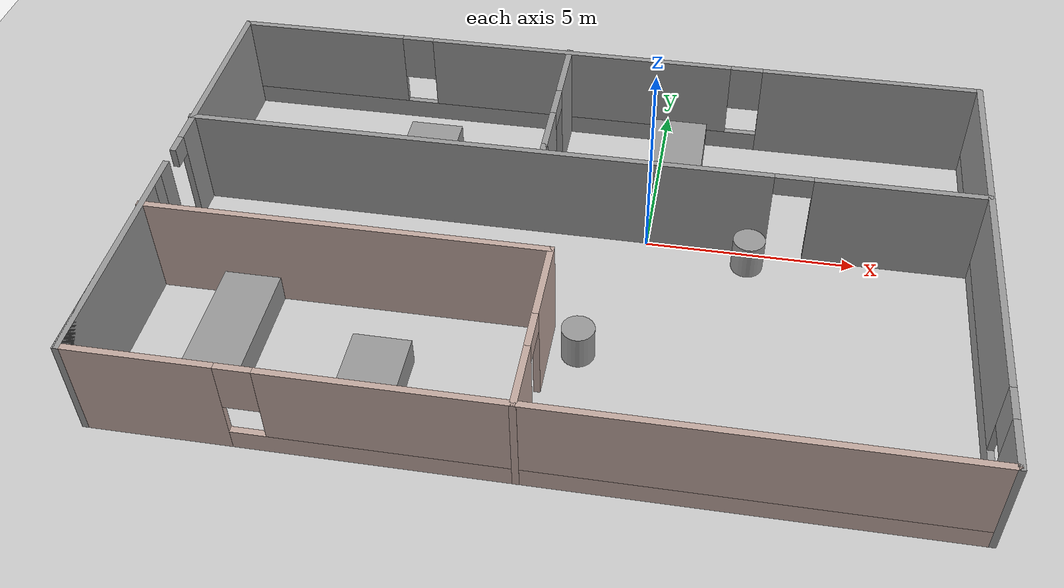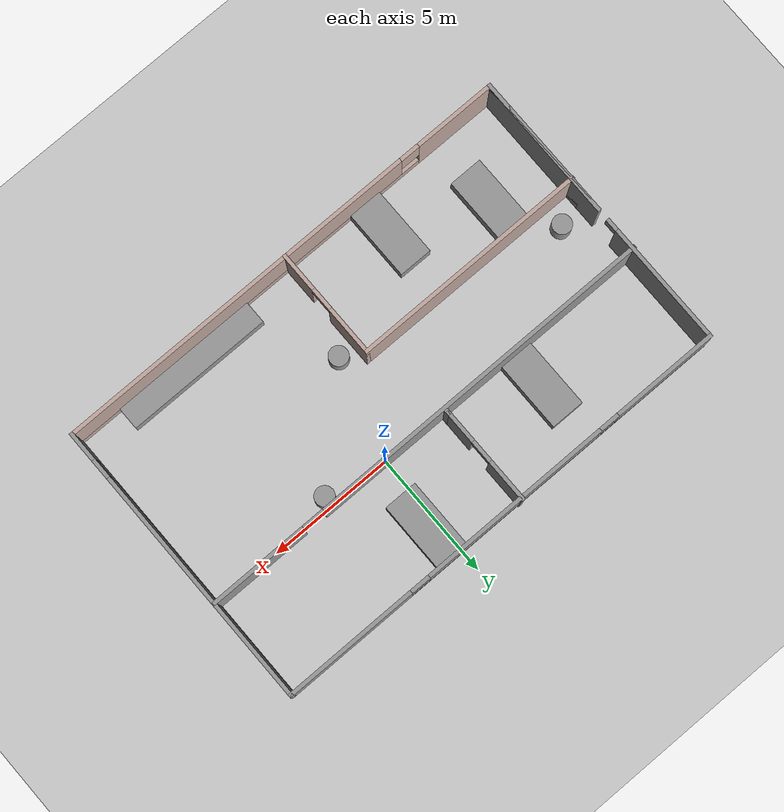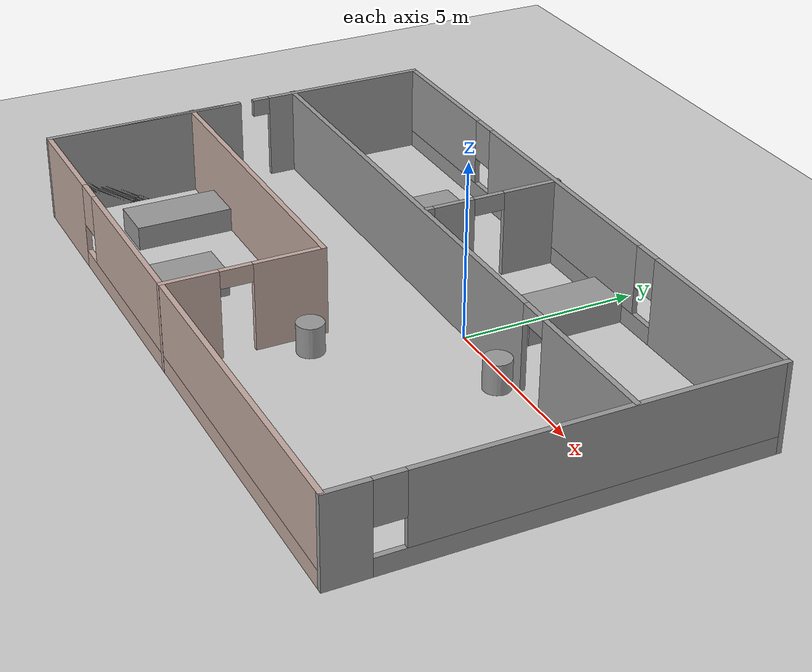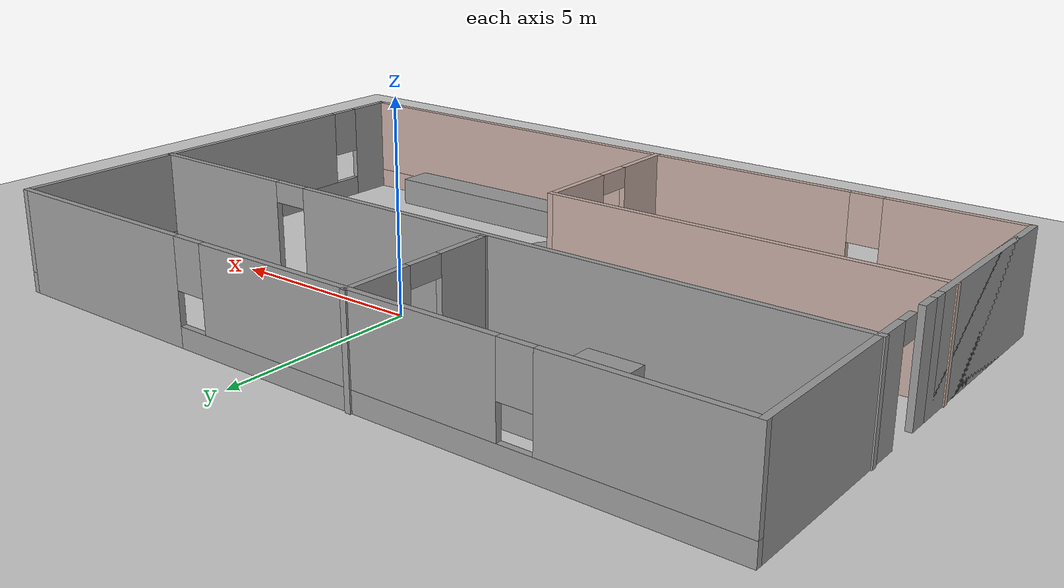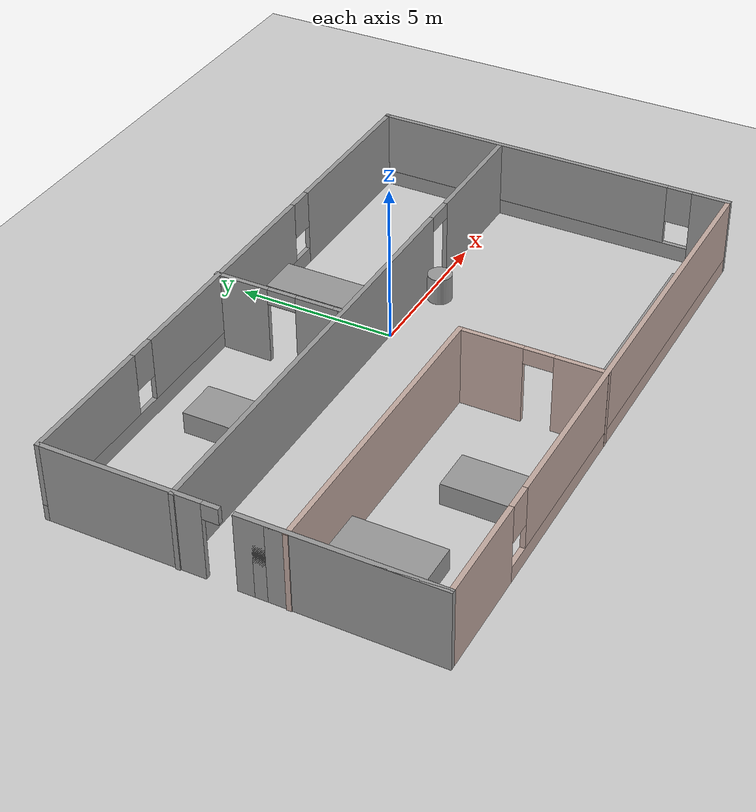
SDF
<sdf version="1.7">
 <world name="default">
  <light name="sun" type="directional">
   <pose>0 0 10 0 -0 0</pose>
   <diffuse>0.8 0.8 0.8 1</diffuse>
   <specular>0.2 0.2 0.2 1</specular>
   <attenuation>
    <range>1000</range>
    <constant>0.9</constant>
    <linear>0.01</linear>
    <quadratic>0.001</quadratic>
   </attenuation>
   <direction>-0.5 0.1 -0.9</direction>
   <spot><inner_angle>0</inner_angle><outer_angle>0</outer_angle><falloff>0</falloff></spot>
  </light>
  <model name="ground_plane">
   <static>1</static>
   <link name="link">
    <collision name="collision">
     <geometry><plane><normal>0 0 1</normal><size>100 100</size></plane></geometry>
     <surface>
      <contact><collide_bitmask>65535</collide_bitmask></contact>
      <friction><ode><mu>100</mu><mu2>50</mu2></ode></friction>
     </surface>
    </collision>
    <visual name="visual">
     <cast_shadows>0</cast_shadows>
     <geometry><plane><normal>0 0 1</normal><size>100 100</size></plane></geometry>
     <material>
      <script><uri>file://media/materials/scripts/gazebo.material</uri><name>Gazebo/Grey</name></script>
     </material>
    </visual>
   </link>
  </model>
  <gravity>0 0 -9.8</gravity>
  <magnetic_field>6e-06 2.3e-05 -4.2e-05</magnetic_field>
  <atmosphere type="adiabatic"/>
  <physics type="ode">
   <max_step_size>0.001</max_step_size>
   <real_time_factor>1</real_time_factor>
   <real_time_update_rate>1000</real_time_update_rate>
  </physics>
  <scene><ambient>0.4 0.4 0.4 1</ambient><background>0.7 0.7 0.7 1</background><shadows>1</shadows></scene>
  <audio><device>default</device></audio>
  <spherical_coordinates>
   <surface_model>EARTH_WGS84</surface_model>
   <latitude_deg>0</latitude_deg>
   <longitude_deg>0</longitude_deg>
   <elevation>0</elevation>
   <heading_deg>0</heading_deg>
  </spherical_coordinates>
  <model name="small_hospital">
   <pose>-1.74761 -1.64393 0 0 -0 0</pose>
   <link name="Wall_1">
    <pose>-9.40807 -0.020223 0 0 -0 -1.5708</pose>
    <visual name="Wall_1_Visual_0">
     <pose>-3.4065 0 1.25 0 -0 0</pose>
     <geometry><box><size>4.93699 0.15 2.5</size></box></geometry>
     <material>
      <script><uri>file://media/materials/scripts/gazebo.material</uri><name>Gazebo/Grey</name></script>
      <ambient>0.752941 0.74902 0.737255 1</ambient>
     </material>
     <meta><layer>0</layer></meta>
    </visual>
    <collision name="Wall_1_Collision_0">
     <geometry><box><size>4.93699 0.15 2.5</size></box></geometry>
     <pose>-3.4065 0 1.25 0 -0 0</pose>
    </collision>
    <visual name="Wall_1_Visual_1">
     <pose>2.9185 0 1.25 0 -0 0</pose>
     <geometry><box><size>5.91301 0.15 2.5</size></box></geometry>
     <material>
      <script><uri>file://media/materials/scripts/gazebo.material</uri><name>Gazebo/Grey</name></script>
      <ambient>0.752941 0.74902 0.737255 1</ambient>
     </material>
     <meta><layer>0</layer></meta>
    </visual>
    <collision name="Wall_1_Collision_1">
     <geometry><box><size>5.91301 0.15 2.5</size></box></geometry>
     <pose>2.9185 0 1.25 0 -0 0</pose>
    </collision>
    <visual name="Wall_1_Visual_2">
     <pose>3.17133 0 1.25 0 -0 0</pose>
     <geometry><box><size>5.40733 0.15 2.5</size></box></geometry>
     <material>
      <script><uri>file://media/materials/scripts/gazebo.material</uri><name>Gazebo/Grey</name></script>
      <ambient>0.752941 0.74902 0.737255 1</ambient>
     </material>
     <meta><layer>0</layer></meta>
    </visual>
    <collision name="Wall_1_Collision_2">
     <geometry><box><size>5.40733 0.15 2.5</size></box></geometry>
     <pose>3.17133 0 1.25 0 -0 0</pose>
    </collision>
    <visual name="Wall_1_Visual_3">
     <pose>3.35823 0 1.25 0 -0 0</pose>
     <geometry><box><size>5.03354 0.15 2.5</size></box></geometry>
     <material>
      <script><uri>file://media/materials/scripts/gazebo.material</uri><name>Gazebo/Grey</name></script>
      <ambient>0.752941 0.74902 0.737255 1</ambient>
     </material>
     <meta><layer>0</layer></meta>
    </visual>
    <collision name="Wall_1_Collision_3">
     <geometry><box><size>5.03354 0.15 2.5</size></box></geometry>
     <pose>3.35823 0 1.25 0 -0 0</pose>
    </collision>
    <visual name="Wall_1_Visual_4">
     <pose>-0.68517 0 2.25 0 -0 0</pose>
     <geometry><box><size>0.505673 0.15 0.5</size></box></geometry>
     <material>
      <script><uri>file://media/materials/scripts/gazebo.material</uri><name>Gazebo/Grey</name></script>
      <ambient>0.752941 0.74902 0.737255 1</ambient>
     </material>
     <meta><layer>0</layer></meta>
    </visual>
    <collision name="Wall_1_Collision_4">
     <geometry><box><size>0.505673 0.15 0.5</size></box></geometry>
     <pose>-0.68517 0 2.25 0 -0 0</pose>
    </collision>
   </link>
   <link name="Wall_11">
    <pose>-0.835559 3.89879 0 0 -0 -1.5708</pose>
    <visual name="Wall_11_Visual_0">
     <pose>-1.12735 0 1.25 0 -0 0</pose>
     <geometry><box><size>1.74531 0.15 2.5</size></box></geometry>
     <material>
      <script><uri>file://media/materials/scripts/gazebo.material</uri><name>Gazebo/Grey</name></script>
      <ambient>0.752941 0.74902 0.737255 1</ambient>
     </material>
     <meta><layer>0</layer></meta>
    </visual>
    <collision name="Wall_11_Collision_0">
     <geometry><box><size>1.74531 0.15 2.5</size></box></geometry>
     <pose>-1.12735 0 1.25 0 -0 0</pose>
    </collision>
    <visual name="Wall_11_Visual_1">
     <pose>1.32265 0 1.25 0 -0 0</pose>
     <geometry><box><size>1.35469 0.15 2.5</size></box></geometry>
     <material>
      <script><uri>file://media/materials/scripts/gazebo.material</uri><name>Gazebo/Grey</name></script>
      <ambient>0.752941 0.74902 0.737255 1</ambient>
     </material>
     <meta><layer>0</layer></meta>
    </visual>
    <collision name="Wall_11_Collision_1">
     <geometry><box><size>1.35469 0.15 2.5</size></box></geometry>
     <pose>1.32265 0 1.25 0 -0 0</pose>
    </collision>
    <visual name="Wall_11_Visual_2">
     <pose>0.195307 0 2.25 0 -0 0</pose>
     <geometry><box><size>0.9 0.15 0.5</size></box></geometry>
     <material>
      <script><uri>file://media/materials/scripts/gazebo.material</uri><name>Gazebo/Grey</name></script>
      <ambient>0.752941 0.74902 0.737255 1</ambient>
     </material>
     <meta><layer>0</layer></meta>
    </visual>
    <collision name="Wall_11_Collision_2">
     <geometry><box><size>0.9 0.15 0.5</size></box></geometry>
     <pose>0.195307 0 2.25 0 -0 0</pose>
    </collision>
   </link>
   <link name="Wall_13">
    <collision name="Wall_13_Collision">
     <geometry><box><size>0.25 0.15 2.5</size></box></geometry>
     <pose>0 0 1.25 0 -0 0</pose>
    </collision>
    <visual name="Wall_13_Visual">
     <pose>0 0 1.25 0 -0 0</pose>
     <geometry><box><size>0.25 0.15 2.5</size></box></geometry>
     <material>
      <script><uri>file://media/materials/scripts/gazebo.material</uri><name>Gazebo/Grey</name></script>
      <ambient>1 1 1 1</ambient>
     </material>
     <meta><layer>0</layer></meta>
    </visual>
    <pose>-0.835559 1.92379 0 0 -0 -1.5708</pose>
   </link>
   <link name="Wall_2">
    <pose>0.016934 -5.82022 0 0 -0 0</pose>
    <visual name="Wall_2_Visual_0">
     <pose>-7.82117 0 1.25 0 -0 0</pose>
     <geometry><box><size>3.35766 0.15 2.5</size></box></geometry>
     <material>
      <script><uri>file://media/materials/scripts/gazebo.material</uri><name>Gazebo/Grey</name></script>
      <ambient>0.760784 0.662745 0.627451 1</ambient>
     </material>
     <meta><layer>0</layer></meta>
    </visual>
    <collision name="Wall_2_Collision_0">
     <geometry><box><size>3.35766 0.15 2.5</size></box></geometry>
     <pose>-7.82117 0 1.25 0 -0 0</pose>
    </collision>
    <visual name="Wall_2_Visual_1">
     <pose>1.67883 0 0.25 0 -0 0</pose>
     <geometry><box><size>15.6423 0.15 0.5</size></box></geometry>
     <material>
      <script><uri>file://media/materials/scripts/gazebo.material</uri><name>Gazebo/Grey</name></script>
      <ambient>0.760784 0.662745 0.627451 1</ambient>
     </material>
     <meta><layer>0</layer></meta>
    </visual>
    <collision name="Wall_2_Collision_1">
     <geometry><box><size>15.6423 0.15 0.5</size></box></geometry>
     <pose>1.67883 0 0.25 0 -0 0</pose>
    </collision>
    <visual name="Wall_2_Visual_2">
     <pose>2.07883 0 1.5 0 -0 0</pose>
     <geometry><box><size>14.8423 0.15 2</size></box></geometry>
     <material>
      <script><uri>file://media/materials/scripts/gazebo.material</uri><name>Gazebo/Grey</name></script>
      <ambient>0.760784 0.662745 0.627451 1</ambient>
     </material>
     <meta><layer>0</layer></meta>
    </visual>
    <collision name="Wall_2_Collision_2">
     <geometry><box><size>14.8423 0.15 2</size></box></geometry>
     <pose>2.07883 0 1.5 0 -0 0</pose>
    </collision>
    <visual name="Wall_2_Visual_3">
     <pose>-5.74234 0 1.9 0 -0 0</pose>
     <geometry><box><size>0.8 0.15 1.2</size></box></geometry>
     <material>
      <script><uri>file://media/materials/scripts/gazebo.material</uri><name>Gazebo/Grey</name></script>
      <ambient>0.760784 0.662745 0.627451 1</ambient>
     </material>
     <meta><layer>0</layer></meta>
    </visual>
    <collision name="Wall_2_Collision_3">
     <geometry><box><size>0.8 0.15 1.2</size></box></geometry>
     <pose>-5.74234 0 1.9 0 -0 0</pose>
    </collision>
   </link>
   <link name="Wall_3">
    <pose>9.44193 -0.020223 0 0 -0 1.5708</pose>
    <visual name="Wall_3_Visual_0">
     <pose>-5.26365 0 1.25 0 -0 0</pose>
     <geometry><box><size>1.22271 0.15 2.5</size></box></geometry>
     <material>
      <script><uri>file://media/materials/scripts/gazebo.material</uri><name>Gazebo/Grey</name></script>
      <ambient>0.752941 0.74902 0.737255 1</ambient>
     </material>
     <meta><layer>0</layer></meta>
    </visual>
    <collision name="Wall_3_Collision_0">
     <geometry><box><size>1.22271 0.15 2.5</size></box></geometry>
     <pose>-5.26365 0 1.25 0 -0 0</pose>
    </collision>
    <visual name="Wall_3_Visual_1">
     <pose>0.611353 0 0.25 0 -0 0</pose>
     <geometry><box><size>10.5273 0.15 0.5</size></box></geometry>
     <material>
      <script><uri>file://media/materials/scripts/gazebo.material</uri><name>Gazebo/Grey</name></script>
      <ambient>0.752941 0.74902 0.737255 1</ambient>
     </material>
     <meta><layer>0</layer></meta>
    </visual>
    <collision name="Wall_3_Collision_1">
     <geometry><box><size>10.5273 0.15 0.5</size></box></geometry>
     <pose>0.611353 0 0.25 0 -0 0</pose>
    </collision>
    <visual name="Wall_3_Visual_2">
     <pose>1.01135 0 1.5 0 -0 0</pose>
     <geometry><box><size>9.72729 0.15 2</size></box></geometry>
     <material>
      <script><uri>file://media/materials/scripts/gazebo.material</uri><name>Gazebo/Grey</name></script>
      <ambient>0.752941 0.74902 0.737255 1</ambient>
     </material>
     <meta><layer>0</layer></meta>
    </visual>
    <collision name="Wall_3_Collision_2">
     <geometry><box><size>9.72729 0.15 2</size></box></geometry>
     <pose>1.01135 0 1.5 0 -0 0</pose>
    </collision>
    <visual name="Wall_3_Visual_3">
     <pose>-4.25229 0 1.9 0 -0 0</pose>
     <geometry><box><size>0.8 0.15 1.2</size></box></geometry>
     <material>
      <script><uri>file://media/materials/scripts/gazebo.material</uri><name>Gazebo/Grey</name></script>
      <ambient>0.752941 0.74902 0.737255 1</ambient>
     </material>
     <meta><layer>0</layer></meta>
    </visual>
    <collision name="Wall_3_Collision_3">
     <geometry><box><size>0.8 0.15 1.2</size></box></geometry>
     <pose>-4.25229 0 1.9 0 -0 0</pose>
    </collision>
   </link>
   <link name="Wall_4">
    <pose>0.016934 5.77978 0 0 -0 3.14159</pose>
    <visual name="Wall_4_Visual_0">
     <pose>-6.79278 0 1.25 0 -0 0</pose>
     <geometry><box><size>5.41443 0.15 2.5</size></box></geometry>
     <material>
      <script><uri>file://media/materials/scripts/gazebo.material</uri><name>Gazebo/Grey</name></script>
      <ambient>0.752941 0.74902 0.737255 1</ambient>
     </material>
     <meta><layer>0</layer></meta>
    </visual>
    <collision name="Wall_4_Collision_0">
     <geometry><box><size>5.41443 0.15 2.5</size></box></geometry>
     <pose>-6.79278 0 1.25 0 -0 0</pose>
    </collision>
    <visual name="Wall_4_Visual_1">
     <pose>2.70722 0 0.25 0 -0 0</pose>
     <geometry><box><size>13.5856 0.15 0.5</size></box></geometry>
     <material>
      <script><uri>file://media/materials/scripts/gazebo.material</uri><name>Gazebo/Grey</name></script>
      <ambient>0.752941 0.74902 0.737255 1</ambient>
     </material>
     <meta><layer>0</layer></meta>
    </visual>
    <collision name="Wall_4_Collision_1">
     <geometry><box><size>13.5856 0.15 0.5</size></box></geometry>
     <pose>2.70722 0 0.25 0 -0 0</pose>
    </collision>
    <visual name="Wall_4_Visual_2">
     <pose>0.571064 0 1.5 0 -0 0</pose>
     <geometry><box><size>7.71326 0.15 2</size></box></geometry>
     <material>
      <script><uri>file://media/materials/scripts/gazebo.material</uri><name>Gazebo/Grey</name></script>
      <ambient>0.752941 0.74902 0.737255 1</ambient>
     </material>
     <meta><layer>0</layer></meta>
    </visual>
    <collision name="Wall_4_Collision_2">
     <geometry><box><size>7.71326 0.15 2</size></box></geometry>
     <pose>0.571064 0 1.5 0 -0 0</pose>
    </collision>
    <visual name="Wall_4_Visual_3">
     <pose>7.36385 0 1.5 0 -0 0</pose>
     <geometry><box><size>4.27231 0.15 2</size></box></geometry>
     <material>
      <script><uri>file://media/materials/scripts/gazebo.material</uri><name>Gazebo/Grey</name></script>
      <ambient>0.752941 0.74902 0.737255 1</ambient>
     </material>
     <meta><layer>0</layer></meta>
    </visual>
    <collision name="Wall_4_Collision_3">
     <geometry><box><size>4.27231 0.15 2</size></box></geometry>
     <pose>7.36385 0 1.5 0 -0 0</pose>
    </collision>
    <visual name="Wall_4_Visual_4">
     <pose>-3.68557 0 1.9 0 -0 0</pose>
     <geometry><box><size>0.8 0.15 1.2</size></box></geometry>
     <material>
      <script><uri>file://media/materials/scripts/gazebo.material</uri><name>Gazebo/Grey</name></script>
      <ambient>0.752941 0.74902 0.737255 1</ambient>
     </material>
     <meta><layer>0</layer></meta>
    </visual>
    <collision name="Wall_4_Collision_4">
     <geometry><box><size>0.8 0.15 1.2</size></box></geometry>
     <pose>-3.68557 0 1.9 0 -0 0</pose>
    </collision>
    <visual name="Wall_4_Visual_5">
     <pose>4.82769 0 1.9 0 -0 0</pose>
     <geometry><box><size>0.8 0.15 1.2</size></box></geometry>
     <material>
      <script><uri>file://media/materials/scripts/gazebo.material</uri><name>Gazebo/Grey</name></script>
      <ambient>0.752941 0.74902 0.737255 1</ambient>
     </material>
     <meta><layer>0</layer></meta>
    </visual>
    <collision name="Wall_4_Collision_5">
     <geometry><box><size>0.8 0.15 1.2</size></box></geometry>
     <pose>4.82769 0 1.9 0 -0 0</pose>
    </collision>
   </link>
   <link name="Wall_6">
    <pose>-0.016935 1.74706 0 0 -0 0</pose>
    <visual name="Wall_6_Visual_0">
     <pose>-2.44987 0 1.25 0 -0 0</pose>
     <geometry><box><size>14.1003 0.15 2.5</size></box></geometry>
     <material>
      <script><uri>file://media/materials/scripts/gazebo.material</uri><name>Gazebo/Grey</name></script>
      <ambient>0.752941 0.74902 0.737255 1</ambient>
     </material>
     <meta><layer>0</layer></meta>
    </visual>
    <collision name="Wall_6_Collision_0">
     <geometry><box><size>14.1003 0.15 2.5</size></box></geometry>
     <pose>-2.44987 0 1.25 0 -0 0</pose>
    </collision>
    <visual name="Wall_6_Visual_1">
     <pose>7.50013 0 1.25 0 -0 0</pose>
     <geometry><box><size>3.99974 0.15 2.5</size></box></geometry>
     <material>
      <script><uri>file://media/materials/scripts/gazebo.material</uri><name>Gazebo/Grey</name></script>
      <ambient>0.752941 0.74902 0.737255 1</ambient>
     </material>
     <meta><layer>0</layer></meta>
    </visual>
    <collision name="Wall_6_Collision_1">
     <geometry><box><size>3.99974 0.15 2.5</size></box></geometry>
     <pose>7.50013 0 1.25 0 -0 0</pose>
    </collision>
    <visual name="Wall_6_Visual_2">
     <pose>5.05026 0 2.25 0 -0 0</pose>
     <geometry><box><size>0.9 0.15 0.5</size></box></geometry>
     <material>
      <script><uri>file://media/materials/scripts/gazebo.material</uri><name>Gazebo/Grey</name></script>
      <ambient>0.752941 0.74902 0.737255 1</ambient>
     </material>
     <meta><layer>0</layer></meta>
    </visual>
    <collision name="Wall_6_Collision_2">
     <geometry><box><size>0.9 0.15 0.5</size></box></geometry>
     <pose>5.05026 0 2.25 0 -0 0</pose>
    </collision>
   </link>
   <link name="Wall_8">
    <collision name="Wall_8_Collision">
     <geometry><box><size>9.5 0.15 2.5</size></box></geometry>
     <pose>0 0 1.25 0 -0 0</pose>
    </collision>
    <visual name="Wall_8_Visual">
     <pose>0 0 1.25 0 -0 0</pose>
     <geometry><box><size>9.5 0.15 2.5</size></box></geometry>
     <material>
      <script><uri>file://media/materials/scripts/gazebo.material</uri><name>Gazebo/Grey</name></script>
      <ambient>0.760784 0.662745 0.627451 1</ambient>
     </material>
     <meta><layer>0</layer></meta>
    </visual>
    <pose>-4.76085 -1.47379 0 0 -0 0</pose>
   </link>
   <link name="Wall_9">
    <pose>-0.085852 -3.64879 0 0 -0 -1.5708</pose>
    <visual name="Wall_9_Visual_0">
     <pose>-1.24448 0 1.25 0 -0 0</pose>
     <geometry><box><size>2.01104 0.15 2.5</size></box></geometry>
     <material>
      <script><uri>file://media/materials/scripts/gazebo.material</uri><name>Gazebo/Grey</name></script>
      <ambient>0.760784 0.662745 0.627451 1</ambient>
     </material>
     <meta><layer>0</layer></meta>
    </visual>
    <collision name="Wall_9_Collision_0">
     <geometry><box><size>2.01104 0.15 2.5</size></box></geometry>
     <pose>-1.24448 0 1.25 0 -0 0</pose>
    </collision>
    <visual name="Wall_9_Visual_1">
     <pose>1.45552 0 1.25 0 -0 0</pose>
     <geometry><box><size>1.58896 0.15 2.5</size></box></geometry>
     <material>
      <script><uri>file://media/materials/scripts/gazebo.material</uri><name>Gazebo/Grey</name></script>
      <ambient>0.760784 0.662745 0.627451 1</ambient>
     </material>
     <meta><layer>0</layer></meta>
    </visual>
    <collision name="Wall_9_Collision_1">
     <geometry><box><size>1.58896 0.15 2.5</size></box></geometry>
     <pose>1.45552 0 1.25 0 -0 0</pose>
    </collision>
    <visual name="Wall_9_Visual_2">
     <pose>0.211038 0 2.25 0 -0 0</pose>
     <geometry><box><size>0.9 0.15 0.5</size></box></geometry>
     <material>
      <script><uri>file://media/materials/scripts/gazebo.material</uri><name>Gazebo/Grey</name></script>
      <ambient>0.760784 0.662745 0.627451 1</ambient>
     </material>
     <meta><layer>0</layer></meta>
    </visual>
    <collision name="Wall_9_Collision_2">
     <geometry><box><size>0.9 0.15 0.5</size></box></geometry>
     <pose>0.211038 0 2.25 0 -0 0</pose>
    </collision>
   </link>
   <static>1</static>
  </model>
  <model name="unit_box">
   <pose>-8.81938 -4.58246 0.345933 -0.000116 -0 -0.000222</pose>
   <link name="link">
    <inertial>
     <mass>1</mass>
     <inertia>
      <ixx>0.166667</ixx>
      <ixy>0</ixy>
      <ixz>0</ixz>
      <iyy>0.166667</iyy>
      <iyz>0</iyz>
      <izz>0.166667</izz>
     </inertia>
    </inertial>
    <collision name="collision"><geometry><box><size>1.33585 2.77111 0.692188</size></box></geometry></collision>
    <visual name="visual">
     <geometry><box><size>1.33585 2.77111 0.692188</size></box></geometry>
     <material>
      <script><name>Gazebo/Grey</name><uri>file://media/materials/scripts/gazebo.material</uri></script>
     </material>
    </visual>
   </link>
  </model>
  <model name="unit_box_clone">
   <pose>-5.35727 -6.00341 0.346089 0 -7e-06 -0.000114</pose>
   <link name="link">
    <inertial>
     <mass>1</mass>
     <inertia>
      <ixx>0.166667</ixx>
      <ixy>0</ixy>
      <ixz>0</ixz>
      <iyy>0.166667</iyy>
      <iyz>0</iyz>
      <izz>0.166667</izz>
     </inertia>
    </inertial>
    <collision name="collision"><geometry><box><size>1.33585 2.77111 0.692188</size></box></geometry></collision>
    <visual name="visual">
     <geometry><box><size>1.33585 2.77111 0.692188</size></box></geometry>
     <material>
      <script><name>Gazebo/Grey</name><uri>file://media/materials/scripts/gazebo.material</uri></script>
     </material>
    </visual>
   </link>
  </model>
  <model name="unit_box_clone_0">
   <pose>-5.89315 1.5639 0.346086 0 -1.2e-05 -0.000288</pose>
   <link name="link">
    <inertial>
     <mass>1</mass>
     <inertia>
      <ixx>0.166667</ixx>
      <ixy>0</ixy>
      <ixz>0</ixz>
      <iyy>0.166667</iyy>
      <iyz>0</iyz>
      <izz>0.166667</izz>
     </inertia>
    </inertial>
    <collision name="collision"><geometry><box><size>1.33585 2.77111 0.692188</size></box></geometry></collision>
    <visual name="visual">
     <geometry><box><size>1.33585 2.77111 0.692188</size></box></geometry>
     <material>
      <script><name>Gazebo/Grey</name><uri>file://media/materials/scripts/gazebo.material</uri></script>
     </material>
    </visual>
   </link>
  </model>
  <model name="unit_box_clone_1">
   <pose>0.409258 2.67453 0.345933 0.000116 0 -8e-05</pose>
   <link name="link">
    <inertial>
     <mass>1</mass>
     <inertia>
      <ixx>0.166667</ixx>
      <ixy>0</ixy>
      <ixz>0</ixz>
      <iyy>0.166667</iyy>
      <iyz>0</iyz>
      <izz>0.166667</izz>
     </inertia>
    </inertial>
    <collision name="collision"><geometry><box><size>1.33585 2.77111 0.692188</size></box></geometry></collision>
    <visual name="visual">
     <geometry><box><size>1.33585 2.77111 0.692188</size></box></geometry>
     <material>
      <script><name>Gazebo/Grey</name><uri>file://media/materials/scripts/gazebo.material</uri></script>
     </material>
    </visual>
   </link>
  </model>
  <model name="unit_box_clone_2">
   <pose>3.00862 -6.94257 0.343125 0.001639 -0 1.57101</pose>
   <link name="link">
    <inertial>
     <mass>1</mass>
     <inertia>
      <ixx>0.166667</ixx>
      <ixy>0</ixy>
      <ixz>0</ixz>
      <iyy>0.166667</iyy>
      <iyz>0</iyz>
      <izz>0.166667</izz>
     </inertia>
    </inertial>
    <collision name="collision"><geometry><box><size>0.884017 5.82044 0.695787</size></box></geometry></collision>
    <visual name="visual">
     <geometry><box><size>0.884017 5.82044 0.695787</size></box></geometry>
     <material>
      <script><name>Gazebo/Grey</name><uri>file://media/materials/scripts/gazebo.material</uri></script>
     </material>
    </visual>
   </link>
  </model>
  <model name="unit_cylinder">
   <pose>-1.11684 -3.82773 0.433145 0 -0 0</pose>
   <link name="link">
    <inertial>
     <mass>1</mass>
     <inertia><ixx>0.145833</ixx><ixy>0</ixy><ixz>0</ixz><iyy>0.145833</iyy><iyz>0</iyz><izz>0.125</izz></inertia>
    </inertial>
    <collision name="collision">
     <geometry><cylinder><radius>0.380539</radius><length>0.866309</length></cylinder></geometry>
    </collision>
    <visual name="visual">
     <geometry><cylinder><radius>0.380539</radius><length>0.866309</length></cylinder></geometry>
     <material>
      <script><name>Gazebo/Grey</name><uri>file://media/materials/scripts/gazebo.material</uri></script>
     </material>
    </visual>
   </link>
  </model>
  <model name="unit_cylinder_clone">
   <pose>2.44031 -0.389093 0.433152 -2e-06 -2e-06 0</pose>
   <link name="link">
    <inertial>
     <mass>1</mass>
     <inertia><ixx>0.145833</ixx><ixy>0</ixy><ixz>0</ixz><iyy>0.145833</iyy><iyz>0</iyz><izz>0.125</izz></inertia>
    </inertial>
    <collision name="collision">
     <geometry><cylinder><radius>0.380539</radius><length>0.86631</length></cylinder></geometry>
    </collision>
    <visual name="visual">
     <geometry><cylinder><radius>0.380539</radius><length>0.86631</length></cylinder></geometry>
     <material>
      <script><name>Gazebo/Grey</name><uri>file://media/materials/scripts/gazebo.material</uri></script>
     </material>
    </visual>
   </link>
  </model>
  <model name="unit_cylinder_clone_0">
   <pose>-10.163 -2.29425 0.433148 2e-06 2e-06 0</pose>
   <link name="link">
    <inertial>
     <mass>1</mass>
     <inertia><ixx>0.145833</ixx><ixy>0</ixy><ixz>0</ixz><iyy>0.145833</iyy><iyz>0</iyz><izz>0.125</izz></inertia>
    </inertial>
    <collision name="collision">
     <geometry><cylinder><radius>0.380539</radius><length>0.86631</length></cylinder></geometry>
    </collision>
    <visual name="visual">
     <geometry><cylinder><radius>0.380539</radius><length>0.86631</length></cylinder></geometry>
     <material>
      <script><name>Gazebo/Grey</name><uri>file://media/materials/scripts/gazebo.material</uri></script>
     </material>
    </visual>
   </link>
  </model>
 </world>
</sdf>
